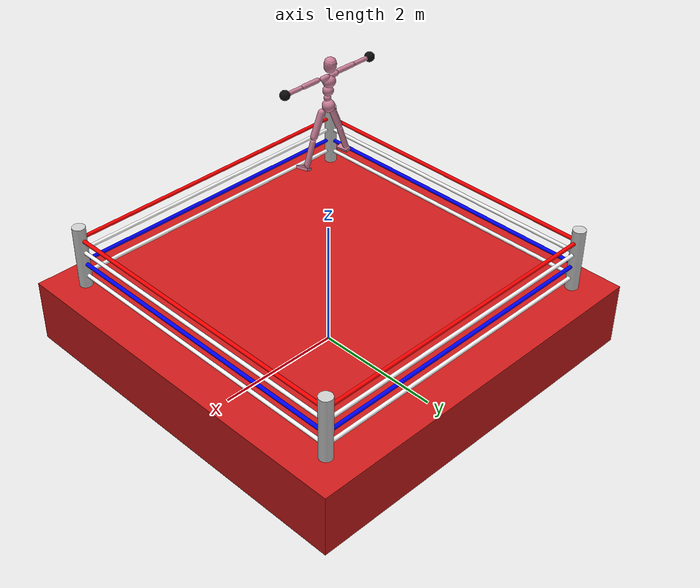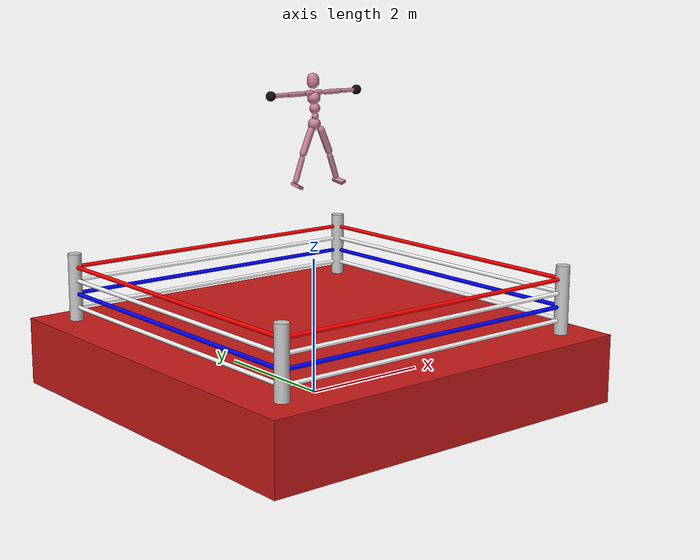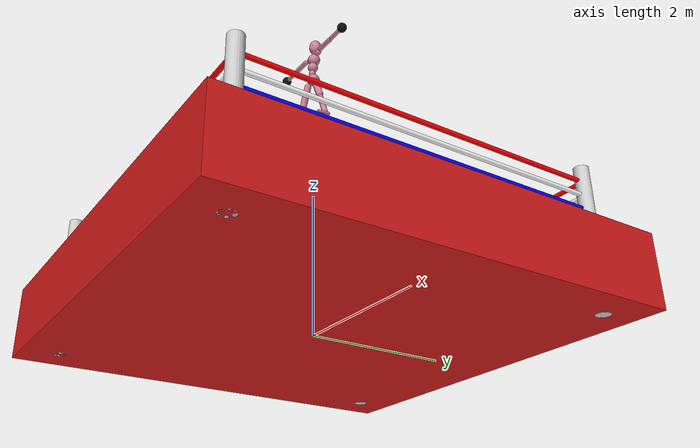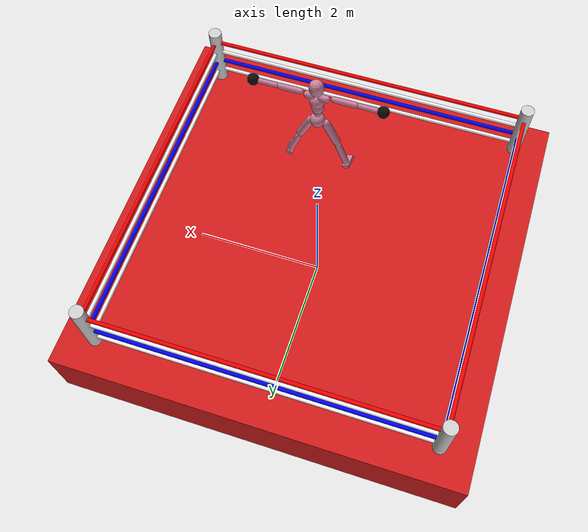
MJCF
<mujoco model="Ring">
  <option timestep="0.005"/>

  <include file="../common/skybox.xml"/>

  <visual>
    <global offwidth="2560" offheight="1440" elevation="-20" azimuth="120"/>
  </visual>

  <default class="main">
    <joint limited="true" solimplimit="0 0.99 0.01" stiffness="0.1" armature=".01" damping="1"/>
    <geom friction="0.7" solref="0.015 1" solimp="0.95 0.99 0.003"/>
    <motor ctrllimited="true" ctrlrange="-1 1"/>
    <default class="humanoid">
      <geom type="capsule" material="humanoid_color"/>
      <default class="stiff_low">
        <joint stiffness=".5" damping="4"/>
      </default>
      <default class="stiff_medium">
        <joint stiffness="10" damping="5"/>
      </default>
      <default class="stiff_high">
        <joint stiffness="30" damping="10"/>
      </default>
      <default class="touch">
        <site group="3" rgba="0 0 1 .5"/>
      </default>
    </default>
    <!-- Default for black gloves -->
    <default class="black_glove">
      <geom rgba="0.05 0.05 0.05 1"/>
    </default>
  </default>

  <worldbody>
    <geom name="platform" type="box" size="3 3 0.5" pos="0 0 0.5" rgba="0.8 0.1 0.1 1" condim="3"/>

    <!-- Boxing Ropes and Posts -->
    <!-- Corner Posts -->
    <geom name="post1" type="cylinder" size="0.1 1.0" pos="-2.5 -2.5 1.0" rgba="0.8 0.8 0.8 1"/>
    <geom name="post2" type="cylinder" size="0.1 1.0" pos="2.5 -2.5 1.0" rgba="0.8 0.8 0.8 1"/>
    <geom name="post3" type="cylinder" size="0.1 1.0" pos="-2.5 2.5 1.0" rgba="0.8 0.8 0.8 1"/>
    <geom name="post4" type="cylinder" size="0.1 1.0" pos="2.5 2.5 1.0" rgba="0.8 0.8 0.8 1"/>

    <!-- Bottom Rope -->
    <geom name="rope_bottom_1" type="cylinder" size="0.03 2.5" pos="0 -2.5 1.2" euler="0 90 0" rgba="1 1 1 1"/>
    <geom name="rope_bottom_2" type="cylinder" size="0.03 2.5" pos="0 2.5 1.2" euler="0 90 0" rgba="1 1 1 1"/>
    <geom name="rope_bottom_3" type="cylinder" size="0.03 2.5" pos="-2.5 0 1.2" euler="90 180 0" rgba="1 1 1 1"/>
    <geom name="rope_bottom_4" type="cylinder" size="0.03 2.5" pos="2.5 0 1.2" euler="90 180 0" rgba="1 1 1 1"/>

    <!-- Middle Rope 1-->
    <geom name="rope_middle_1_1" type="cylinder" size="0.03 2.5" pos="0 -2.5 1.4" euler="0 90 0" rgba="0 0 1 1"/>
    <geom name="rope_middle_1_2" type="cylinder" size="0.03 2.5" pos="0 2.5 1.4" euler="0 90 0" rgba="0 0 1 1"/>
    <geom name="rope_middle_1_3" type="cylinder" size="0.03 2.5" pos="-2.5 0 1.4" euler="90 180 0" rgba="0 0 1 1"/>
    <geom name="rope_middle_1_4" type="cylinder" size="0.03 2.5" pos="2.5 0 1.4" euler="90 180 0" rgba="0 0 1 1"/>

    <!-- Middle Rope 2 -->
    <geom name="rope_middle_2_1" type="cylinder" size="0.03 2.5" pos="0 -2.5 1.6" euler="0 90 0" rgba="1 1 1 1"/>
    <geom name="rope_middle_2_2" type="cylinder" size="0.03 2.5" pos="0 2.5 1.6" euler="0 90 0" rgba="1 1 1 1"/>
    <geom name="rope_middle_2_3" type="cylinder" size="0.03 2.5" pos="-2.5 0 1.6" euler="90 180 0" rgba="1 1 1 1"/>
    <geom name="rope_middle_2_4" type="cylinder" size="0.03 2.5" pos="2.5 0 1.6" euler="90 180 0" rgba="1 1 1 1"/>

    <!-- Top Rope -->
    <geom name="rope_top_1" type="cylinder" size="0.03 2.5" pos="0 -2.5 1.8" euler="0 90 0" rgba="1 0 0 1"/>
    <geom name="rope_top_2" type="cylinder" size="0.03 2.5" pos="0 2.5 1.8" euler="0 90 0" rgba="1 0 0 1"/>
    <geom name="rope_top_3" type="cylinder" size="0.03 2.5" pos="-2.5 0 1.8" euler="90 180 0" rgba="1 0 0 1"/>
    <geom name="rope_top_4" type="cylinder" size="0.03 2.5" pos="2.5 0 1.8" euler="90 180 0" rgba="1 0 0 1"/>

    <body name="root" childclass="humanoid" pos="0 0 4" euler="90 0 0">
      <site name="root" size=".01" rgba="0.5 0.5 0.5 0"/>
      <freejoint name="root"/>
      <geom name="pelvis" type="sphere" size="0.09" pos="0 -0.05 0"/>
      <body name="lhipjoint">
        <body name="lfemur" pos="0.102 -0.095 0.04" quat="1 0 0 0.17365">
          <joint name="lfemurrx" axis="1 0 0" range="-160 20" class="stiff_medium"/>
          <joint name="lfemurry" axis="0 1 0" range="-70 70" class="stiff_medium"/>
          <joint name="lfemurrz" axis="0 0 1" range="-70 70" class="stiff_medium"/>
          <geom name="lfemur" size="0.05 0.17" pos="-.01 -0.202473 0" quat="0.7 -0.7 -0.1228 -0.07"/>
          <body name="ltibia" pos="0 -0.404945 0">
            <joint name="ltibiarx" axis="1 0 0" range="1   170" class="stiff_low"/>
            <geom name="ltibia" size="0.04 0.16" pos="0 -0.202846 0" quat="0.7 -0.7 -0.1228 -0.1228"/>
            <body name="lfoot" pos="0 -0.405693 0" quat="0.707107 -0.707107 0 0">
              <joint name="lfootrx" axis="1 0 0" range="-45    90" class="stiff_medium"/>
              <joint name="lfootrz" axis="0 0 1" range="-70 20" class="stiff_medium"/>
              <geom name="lfoot" type="box" size="0.04 0.10 0.02" pos="-.005 -.05 -0.025" euler="10 0 0" />
              <site name="lfoot_touch" type="box" pos="-.005 -.05 -0.025" size=".04 .1 .02" euler="10 0 0" class="touch"/>
            </body>
          </body>
        </body>
      </body>
      <body name="rhipjoint">
        <body name="rfemur" pos="-0.102 -0.095 0.04" quat="1 0 0 -0.17365">
          <joint name="rfemurrx" axis="1 0 0" range="-160 20" class="stiff_medium"/>
          <joint name="rfemurry" axis="0 1 0" range="-70 70" class="stiff_medium"/>
          <joint name="rfemurrz" axis="0 0 1" range="-70 70" class="stiff_medium"/>
          <geom name="rfemur" size="0.05 0.17" pos=".01 -0.202473 0" quat="0.7 -0.7 0.1228 0.07"/>
          <body name="rtibia" pos="0 -0.404945 0">
            <joint name="rtibiarx" axis="1 0 0" range="1   170" class="stiff_low"/>
            <geom name="rtibia" size="0.04 0.16" pos="0 -0.202846 0" quat="0.7 -0.7 0.1228 0.1228"/>
            <body name="rfoot" pos="0 -0.405693 0" quat="0.707107 -0.707107 0 0">
              <site name="rfoot_touch" type="box" pos=".005 -.05 -0.025" size=".04 .10 .02" euler="10 0 0" class="touch"/>
              <joint name="rfootrx" axis="1 0 0" range="-45    90" class="stiff_medium"/>
              <joint name="rfootrz" axis="0 0 1" range="-20 70" class="stiff_medium"/>
              <geom name="rfoot" type="box" pos=".005 -.05 -0.025" size=".04 .10 .02" euler="10 0 0"/>
            </body>
          </body>
        </body>
      </body>
      <body name="lowerback">
        <joint name="lowerbackrx" axis="1 0 0" range="-20 45" class="stiff_high"/>
        <joint name="lowerbackry" axis="0 1 0" range="-30 30" class="stiff_high"/>
        <joint name="lowerbackrz" axis="0 0 1" range="-30 30" class="stiff_high"/>
        <geom name="lowerback" type="sphere" size="0.05" pos="0 0.06 .02"/>
        <body name="upperback" pos="0 0.11 -0.01">
          <joint name="upperbackrx" axis="1 0 0" range="-20 45" class="stiff_high"/>
          <joint name="upperbackry" axis="0 1 0" range="-30 30" class="stiff_high"/>
          <joint name="upperbackrz" axis="0 0 1" range="-30 30" class="stiff_high"/>
          <geom name="upperback" type="sphere" size="0.075" pos="0 0.06 0.02"/>
          <body name="thorax" pos="0.000512528 0.11356 0.000936821">
            <joint name="thoraxrx" axis="1 0 0" range="-20 45" class="stiff_high"/>
            <joint name="thoraxry" axis="0 1 0" range="-30 30" class="stiff_high"/>
            <joint name="thoraxrz" axis="0 0 1" range="-30 30" class="stiff_high"/>
            <geom name="thorax_sphere1" type="sphere" size="0.09" pos="0 0.09 0"/>
            <body name="head" pos="0 0.08 0.0">
                  <camera name="egocentric" pos="0 0 0" xyaxes="-1 0 0 0 1 0" fovy="80"/>
                  <joint name="headrx" axis="1 0 0" range="-20 45" class="stiff_medium"/>
                  <joint name="headry" axis="0 1 0" range="-30 30" class="stiff_medium"/>
                  <joint name="headrz" axis="0 0 1" range="-30 30" class="stiff_medium"/>
                  <geom name="head" size="0.085 0.025" pos="0 0.25 -.02" quat="1 .9 0 0"/>
            </body>
            <body name="lclavicle" pos="0 0.113945 0.00468037">
            <!-- Seems to be no movement in the data here. Maybe remove? -->
              <joint name="lclaviclery" axis="0 1 0" range="-20 10" class="stiff_high"/>
              <joint name="lclaviclerz" axis="0 0 1" range="0 20" class="stiff_high"/>
                <geom name="lclavicle" size="0.04 0.035" pos="0.08 0.05 -.01" quat="1 0 -1 0"/>
              <body name="lhumerus" pos="0.183 0.05 0.01" quat="0.18 0.68 -0.68 0.18">
                <joint name="lhumerusrx" axis="1 0 0" range="-60 90" class="stiff_low"/>
                <joint name="lhumerusry" axis="0 1 0" range="-90 90" class="stiff_low"/>
                <joint name="lhumerusrz" axis="0 0 1" range="-90 90" class="stiff_low"/>
                <geom name="lhumerus" size="0.035 0.124" pos="0 -0.138 0" quat="0.612 -0.612 0.35 0.35"/>
                <body name="lradius" pos="0 -0.277 0">
                  <joint name="lradiusrx" axis="1 0 0" range="-10 170" class="stiff_low"/>
                  <geom name="lradius" size="0.03 0.1" pos="0 -0.13 0" quat="0.612 -0.612 0.35 0.35"/>
                  <body name="lwrist" pos="0 -0.257 0" quat="-0.5 0 0.866 0">
                    <geom name="lglove" type="sphere" size="0.07" pos="0 -0.05 0" quat="0 0 -1 -1" class="black_glove"/>
                  </body>
                </body>
              </body>
            </body>
            <body name="rclavicle" pos="0 0.113945 0.00468037">
            <!-- Seems to be no movement here in the data. Maybe remove? -->
              <joint name="rclaviclery" axis="0 1 0" range="-10 20" class="stiff_high"/>
              <joint name="rclaviclerz" axis="0 0 1" range="-20 0" class="stiff_high"/>
              <geom name="rclavicle" size="0.04 0.035" pos="-.08 0.05 -.01" quat="1 0 -1 0"/>
              <body name="rhumerus" pos="-0.183 0.05 0.01" quat="0.18 0.68 0.68 -0.18">
                <joint name="rhumerusrx" axis="1 0 0" range="-60 90" class="stiff_low"/>
                <joint name="rhumerusry" axis="0 1 0" range="-90 90" class="stiff_low"/>
                <joint name="rhumerusrz" axis="0 0 1" range="-90 90" class="stiff_low"/>
                <geom name="rhumerus" size="0.035 0.124" pos="0 -0.138 0" quat="0.61 -0.61 -0.35 -0.35"/>
                <body name="rradius" pos="0 -0.277 0">
                  <joint name="rradiusrx" axis="1 0 0" range="-10 170" class="stiff_low"/>
                  <geom name="rradius" size="0.03 0.1" pos="0 -0.13 0" quat="0.612 -0.612 -0.35 -0.35"/>
                  <body name="rwrist" pos="0 -0.257 0" quat="-0.5 0 -0.866 0">
                    <geom name="rglove" type="sphere" size="0.07" pos="0 -0.05 0" quat="0 0 1 1" class="black_glove"/>
                  </body>
                </body>
              </body>
            </body>
          </body>
        </body>
      </body>
    </body>

    <!-- Uniform Light Focused on Mat -->
    <light name="mat_light" diffuse="1.0 1.0 1.0" specular="0.2 0.2 0.2" pos="0 0 4" dir="0 0 -1" cutoff="180" exponent="1"/>
  </worldbody>

    <contact>
    <exclude body1="lclavicle" body2="rclavicle"/>
    <exclude body1="head" body2="lclavicle"/>
    <exclude body1="head" body2="rclavicle"/>
  </contact>

  <actuator>
    <motor name="headrx" joint="headrx" gear="20"/>
    <motor name="headry" joint="headry" gear="20"/>
    <motor name="headrz" joint="headrz" gear="20"/>
    <motor name="lclaviclery" joint="lclaviclery" gear="20"/>
    <motor name="lclaviclerz" joint="lclaviclerz" gear="20"/>
    <motor name="lfemurrx" joint="lfemurrx" gear="120"/>
    <motor name="lfemurry" joint="lfemurry" gear="40"/>
    <motor name="lfemurrz" joint="lfemurrz" gear="40"/>
    <motor name="lfootrx" joint="lfootrx" gear="20"/>
    <motor name="lfootrz" joint="lfootrz" gear="20"/>
    <motor name="lhumerusrx" joint="lhumerusrx" gear="40"/>
    <motor name="lhumerusry" joint="lhumerusry" gear="40"/>
    <motor name="lhumerusrz" joint="lhumerusrz" gear="40"/>
    <motor name="lowerbackrx" joint="lowerbackrx" gear="40"/>
    <motor name="lowerbackry" joint="lowerbackry" gear="40"/>
    <motor name="lowerbackrz" joint="lowerbackrz" gear="40"/>
    <motor name="lradiusrx" joint="lradiusrx" gear="40"/>
    <motor name="ltibiarx" joint="ltibiarx" gear="80"/>
    <motor name="rclaviclery" joint="rclaviclery" gear="20"/>
    <motor name="rclaviclerz" joint="rclaviclerz" gear="20"/>
    <motor name="rfemurrx" joint="rfemurrx" gear="120"/>
    <motor name="rfemurry" joint="rfemurry" gear="40"/>
    <motor name="rfemurrz" joint="rfemurrz" gear="40"/>
    <motor name="rfootrx" joint="rfootrx" gear="20"/>
    <motor name="rfootrz" joint="rfootrz" gear="20"/>
    <motor name="rhumerusrx" joint="rhumerusrx" gear="40"/>
    <motor name="rhumerusry" joint="rhumerusry" gear="40"/>
    <motor name="rhumerusrz" joint="rhumerusrz" gear="40"/>
    <motor name="rradiusrx" joint="rradiusrx" gear="40"/>
    <motor name="rtibiarx" joint="rtibiarx" gear="80"/>
    <motor name="thoraxrx" joint="thoraxrx" gear="40"/>
    <motor name="thoraxry" joint="thoraxry" gear="40"/>
    <motor name="thoraxrz" joint="thoraxrz" gear="40"/>
    <motor name="upperbackrx" joint="upperbackrx" gear="40"/>
    <motor name="upperbackry" joint="upperbackry" gear="40"/>
    <motor name="upperbackrz" joint="upperbackrz" gear="40"/>
  </actuator>

  <sensor>
    <subtreelinvel name="thorax_subtreelinvel" body="thorax"/>
    <velocimeter name="sensor_root_veloc" site="root"/>
    <gyro name="sensor_root_gyro" site="root"/>
    <accelerometer name="sensor_root_accel" site="root"/>
    <touch name="sensor_touch_rfoot" site="rfoot_touch"/>
    <touch name="sensor_touch_lfoot" site="lfoot_touch"/>
  </sensor>
</mujoco>

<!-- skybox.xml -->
<mujoco>
  <asset>
      <texture name="skybox" type="skybox" builtin="gradient" rgb1=".4 .6 .8" rgb2="0 0 0"
               width="800" height="800" mark="random" markrgb="1 1 1"/>
      <material name="humanoid_color" rgba="0.8 0.5 0.6 1"/>
  </asset>
</mujoco>
